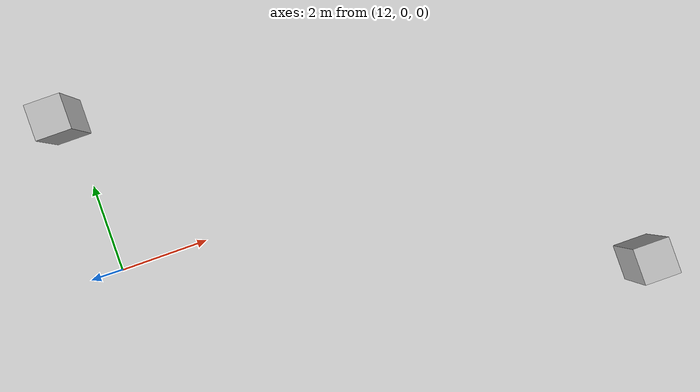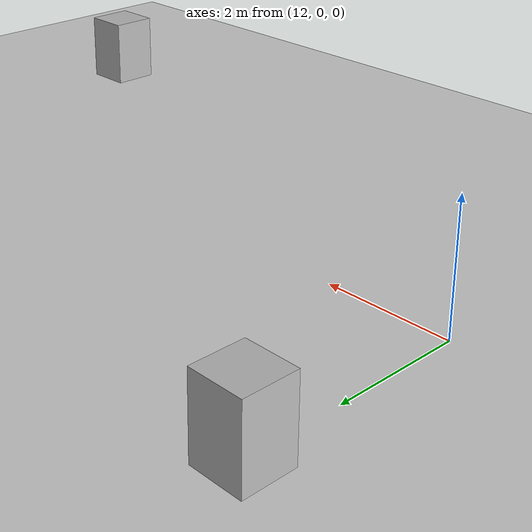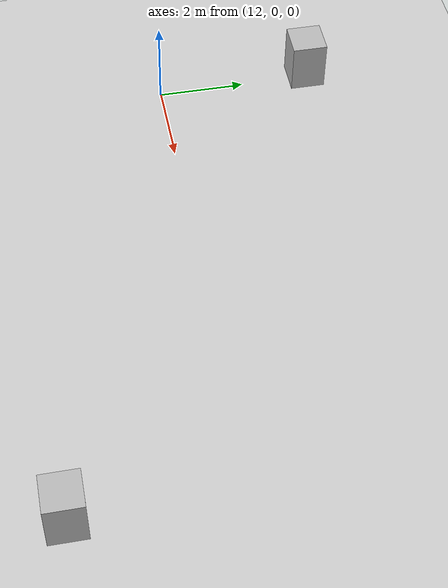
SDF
<?xml version="1.0"?>
<sdf version="1.6">
  <world name="v2-04g-r6-i5-compile-support-cruise-s5164">
    <gravity>0 0 -9.81</gravity>
    <physics name="v2_deterministic" type="ode">
      <max_step_size>0.002</max_step_size>
      <real_time_update_rate>500</real_time_update_rate>
    </physics>
    <include>
      <uri>model://sun</uri>
    </include>
    <include>
      <uri>model://ground_plane</uri>
    </include>
    <model name="cruise-left">
      <static>true</static>
      <pose>11.950307601 3.554795258 0.600000000 0 0 -0.001159997</pose>
      <link name="link">
        <collision name="collision">
          <geometry>
            <box>
              <size>0.800000 0.800000 1.200000</size>
            </box>
          </geometry>
        </collision>
        <visual name="visual">
          <geometry>
            <box>
              <size>0.800000 0.800000 1.200000</size>
            </box>
          </geometry>
        </visual>
      </link>
    </model>
    <model name="cruise-right">
      <static>true</static>
      <pose>23.025943389 -3.557184727 0.600000000 0 0 0.001355514</pose>
      <link name="link">
        <collision name="collision">
          <geometry>
            <box>
              <size>0.800000 0.800000 1.200000</size>
            </box>
          </geometry>
        </collision>
        <visual name="visual">
          <geometry>
            <box>
              <size>0.800000 0.800000 1.200000</size>
            </box>
          </geometry>
        </visual>
      </link>
    </model>
  </world>
</sdf>
